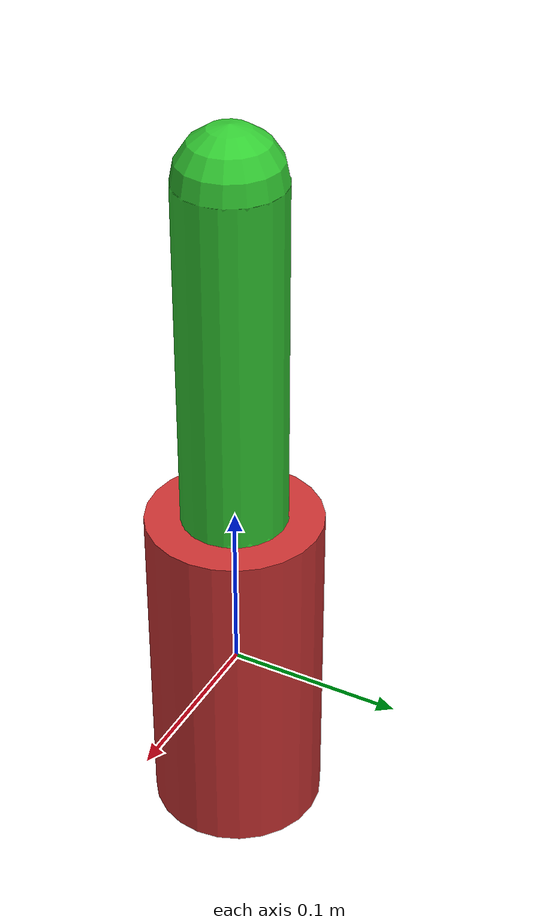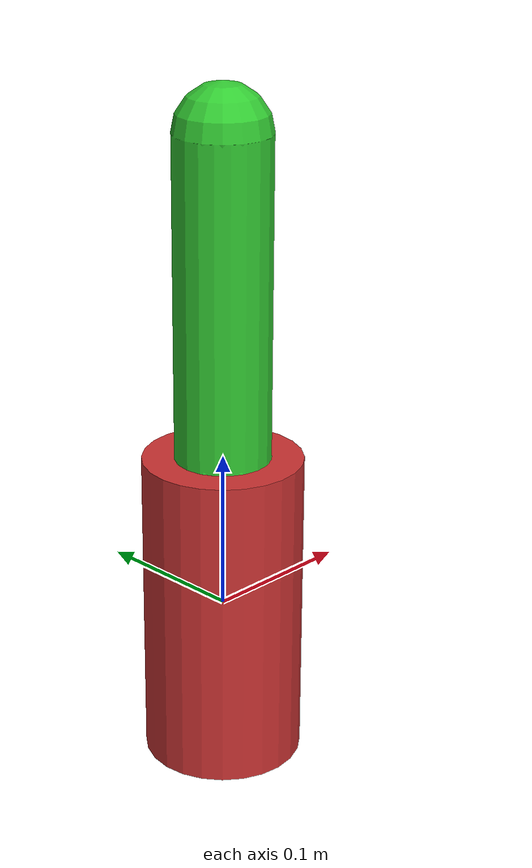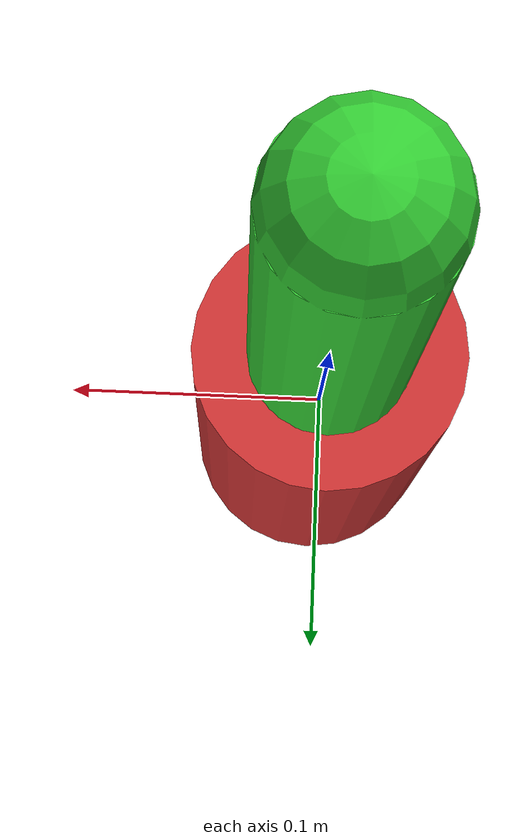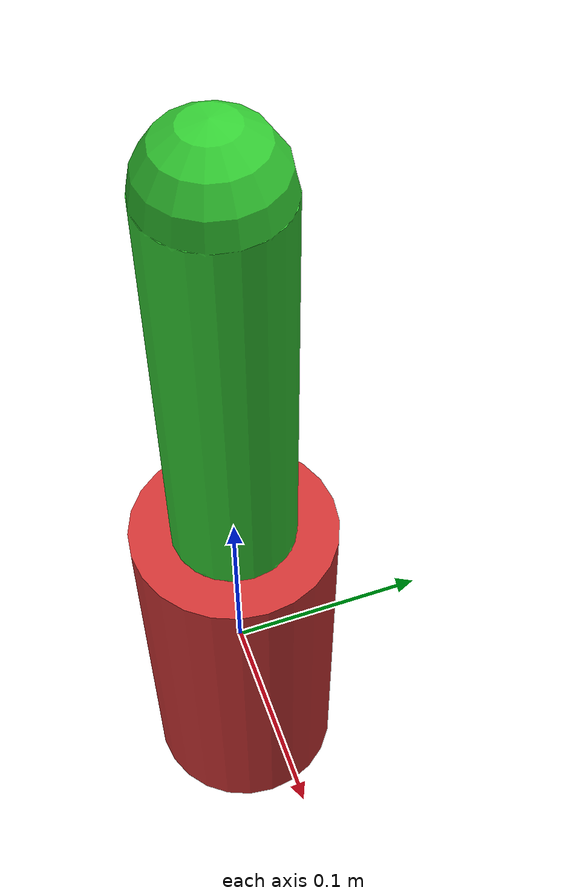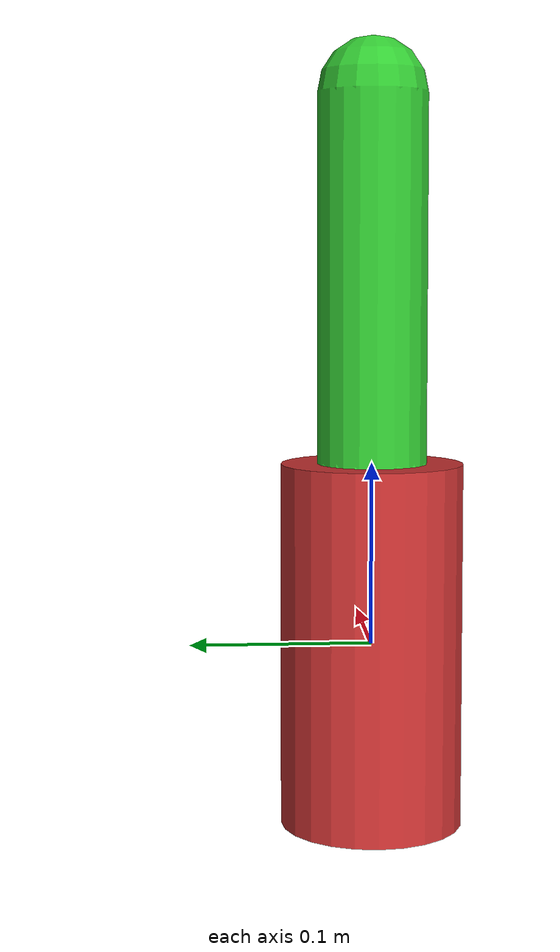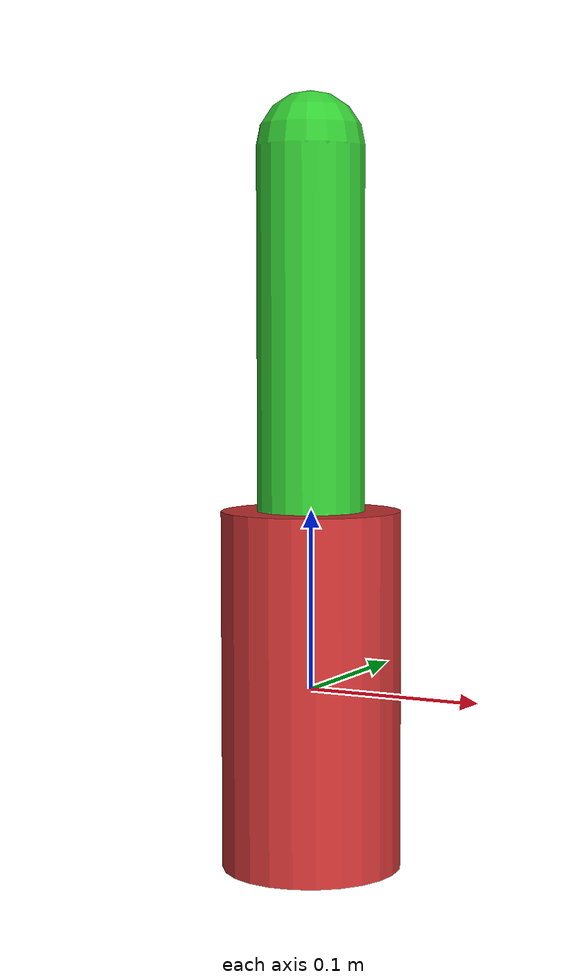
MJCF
<mujoco model="keyframe_scene_test">
  <compiler angle="radian"/>
  <option timestep="0.002" solver="Newton" iterations="20"/>

  <worldbody>
    <geom name="floor" type="plane" size="5 5 0.1" pos="0 0 -1.0" rgba="0.3 0.3 0.3 1"/>

    <body name="link1" pos="0 0 0">
      <joint name="j1" type="hinge" axis="0 0 1" range="-3.14 3.14"/>
      <inertial pos="0 0 0.1" mass="1.0" diaginertia="0.01 0.01 0.01"/>
      <geom type="cylinder" size="0.05 0.1" rgba="0.8 0.2 0.2 1"/>
      <body name="link2" pos="0 0 0.2">
        <joint name="j2" type="hinge" axis="0 1 0" range="-1.57 1.57"/>
        <inertial pos="0 0 0.1" mass="0.5" diaginertia="0.005 0.005 0.005"/>
        <geom type="capsule" size="0.03 0.1" rgba="0.2 0.8 0.2 1"/>
      </body>
    </body>
  </worldbody>

  <actuator>
    <position name="m1" joint="j1" kp="100" ctrlrange="-3.14 3.14"/>
    <position name="m2" joint="j2" kp="100" ctrlrange="-1.57 1.57"/>
  </actuator>

  <keyframe>
    <key name="home" qpos="0.30 -0.70"/>
  </keyframe>
</mujoco>
